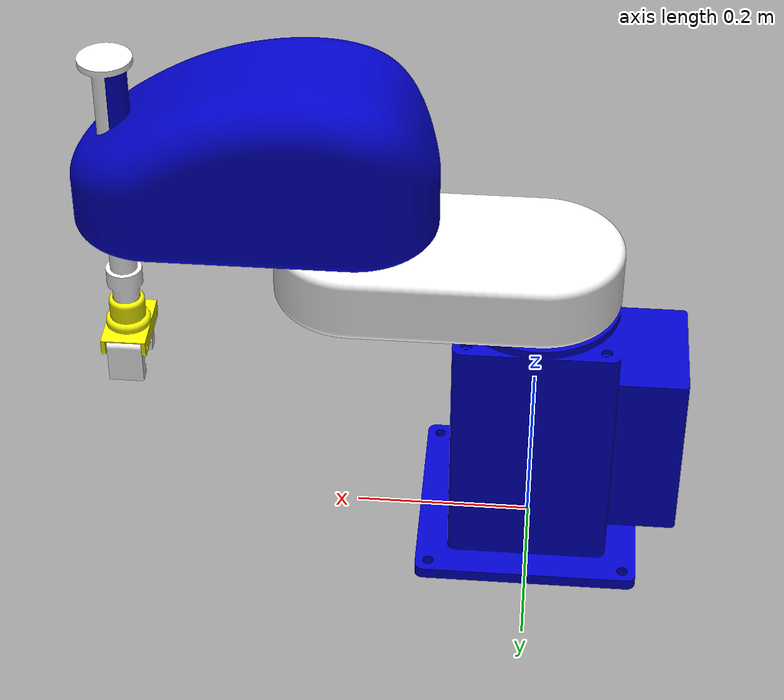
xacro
<?xml version="1.0"?>
<robot xmlns:xacro="http://www.ros.org/wiki/xacro" name="scara">

  <xacro:arg name="is_sim" default="true"/>

  <xacro:include filename="$(find scara_description)/urdf/scara_gazebo.xacro" />
  <xacro:include filename="$(find scara_description)/urdf/scara_ros2_control.xacro" />

  <material name="blue">
    <color rgba="0 0 0.8 1"/>
  </material>
  <material name="white">
    <color rgba="1 1 1 1"/>
  </material>
  <material name="yellow">
    <color rgba="1 1 0 1"/>
  </material>

  <xacro:property name="PI" value="3.14159265359" />
  <xacro:property name="effort" value="30.0" />
  <xacro:property name="velocity" value="1.0" />

  <xacro:macro name="default_inertial" params="mass">
    <inertial>
      <origin xyz="0 0 0" rpy="0 0 0"/>
      <mass value="${mass}" />
      <inertia ixx="1.0" ixy="0.0" ixz="0.0"
               iyy="1.0" iyz="0.0"
               izz="1.0" />
    </inertial>
  </xacro:macro>

  <xacro:macro name="default_transmission" params="number">
    <transmission name="transmission_${number}">
      <plugin>transmission_interface/SimpleTransmission</plugin>
      <actuator name="motor_${number}" role="actuator1"/>
      <joint name="joint_${number}" role="joint1">
        <mechanical_reduction>1.0</mechanical_reduction>
      </joint>
    </transmission>
  </xacro:macro>

  <link name="world"/>

  <joint name="virtual_joint" type="fixed">
    <parent link="world"/>
    <child link="base_link"/>
    <origin xyz="0 0 0" rpy="0 0 0"/>
  </joint>

  <link name="base_link">
    <xacro:default_inertial mass="2.0"/>
    <visual>
      <origin rpy="0 0 ${PI}" xyz="0 0 0.15"/>
      <geometry>
        <mesh filename="package://scara_description/meshes/bs.stl" scale="0.001 0.001 0.001"/>
      </geometry>
      <material name="blue"/>
    </visual>
    <collision>
      <origin rpy="0 0 ${PI}" xyz="0 0 0.15"/>
      <geometry>
        <mesh filename="package://scara_description/meshes/bs.stl" scale="0.001 0.001 0.001"/>
      </geometry>
    </collision>
  </link>

  <joint name="joint_1" type="revolute">
    <parent link="base_link"/>
    <child link="es_link"/>
    <origin xyz="0 0 0.309" rpy="0 0 0"/>
    <axis xyz="0 0 1"/>
    <limit lower="-${PI}" upper="${PI}" effort="${effort}" velocity="${velocity}"/>
  </joint>

  <link name="es_link">
    <xacro:default_inertial mass="0.5"/>
    <visual>
      <origin rpy="0 0 ${PI}" xyz="0.1 0 0"/>
      <geometry>
        <mesh filename="package://scara_description/meshes/es.stl" scale="0.001 0.001 0.001"/>
      </geometry>
      <material name="white"/>
    </visual>
    <collision>
      <origin rpy="0 0 ${PI}" xyz="0.1 0 0"/>
      <geometry>
        <mesh filename="package://scara_description/meshes/es.stl" scale="0.001 0.001 0.001"/>
      </geometry>
    </collision>
  </link>

  <joint name="joint_2" type="revolute">
    <parent link="es_link"/>
    <child link="as_link"/>
    <origin xyz="0.2 0 0.078" rpy="0 0 0"/>
    <axis xyz="0 0 1"/>
    <limit lower="-${PI/2}" upper="${PI/2}" effort="${effort}" velocity="${velocity}"/>
  </joint>

  <link name="as_link">
    <xacro:default_inertial mass="0.5"/>
    <visual>
      <origin rpy="0 0 ${PI}" xyz="0.1062 0 0.049"/>
      <geometry>
        <mesh filename="package://scara_description/meshes/as.stl" scale="0.001 0.001 0.001"/>
      </geometry>
      <material name="blue"/>
    </visual>
    <collision>
      <origin rpy="0 0 ${PI}" xyz="0.1062 0 0.049"/>
      <geometry>
        <mesh filename="package://scara_description/meshes/as.stl" scale="0.001 0.001 0.001"/>
      </geometry>
    </collision>
  </link>

  <joint name="joint_3" type="prismatic">
    <parent link="as_link"/>
    <child link="cs_link"/>
    <origin xyz="0.2562 0 0.049" rpy="0 0 0"/>
    <axis xyz="0 0 1"/>
    <limit lower="-0.22" upper="0" effort="${effort}" velocity="${velocity}"/>
  </joint>

  <link name="cs_link">
    <xacro:default_inertial mass="0.15"/>
    <visual>
      <origin rpy="0 0 0" xyz="0 0 0"/>
      <geometry>
        <mesh filename="package://scara_description/meshes/cs.stl" scale="0.001 0.001 0.001"/>
      </geometry>
      <material name="white"/>
    </visual>
    <collision>
      <origin rpy="0 0 0" xyz="0 0 0"/>
      <geometry>
        <mesh filename="package://scara_description/meshes/cs.stl" scale="0.001 0.001 0.001"/>
      </geometry>
    </collision>
  </link>

  <joint name="wrist_joint" type="revolute">
    <parent link="cs_link"/>
    <child link="g1_gripper"/>
    <origin xyz="0 0 -0.175" rpy="0 0 0"/>
    <axis xyz="0 0 1"/>
    <limit lower="-${PI/2}" upper="${PI/2}" effort="${effort}" velocity="${velocity}"/>
  </joint>

  <link name="g1_gripper">
    <xacro:default_inertial mass="0.1"/>
    <visual>
      <origin rpy="0 0 0" xyz="0 0 0"/>
      <geometry>
        <mesh filename="package://scara_description/meshes/g1.stl" scale="0.001 0.001 0.001"/>
      </geometry>
      <material name="yellow"/>
    </visual>
    <collision>
      <origin rpy="0 0 0" xyz="0 0 0"/>
      <geometry>
        <mesh filename="package://scara_description/meshes/g1.stl" scale="0.001 0.001 0.001"/>
      </geometry>
    </collision>
  </link>

  <joint name="gripper_joint1" type="prismatic">
    <parent link="g1_gripper"/>
    <child link="g2_gripper"/>
    <origin xyz="0.0195 0.010 -0.04175" rpy="0 0 0"/>
    <axis xyz="0 -1 0"/>
    <limit lower="0" upper="0.015" effort="${effort}" velocity="0.1"/>
  </joint>

  <link name="g2_gripper">
    <xacro:default_inertial mass="0.02"/>
    <visual>
      <origin rpy="0 0 0" xyz="0 0 0"/>
      <geometry>
        <mesh filename="package://scara_description/meshes/g2.stl" scale="0.001 0.001 0.001"/>
      </geometry>
      <material name="white"/>
    </visual>
    <collision>
      <origin rpy="0 0 0" xyz="0 0 0"/>
      <geometry>
        <mesh filename="package://scara_description/meshes/g2.stl" scale="0.001 0.001 0.001"/>
      </geometry>
    </collision>
  </link>

  <joint name="gripper_joint2" type="prismatic">
    <parent link="g1_gripper"/>
    <child link="g3_gripper"/>
    <origin xyz="0.0195 -0.030 -0.04175" rpy="0 0 0"/>
    <axis xyz="0 -1 0"/>
    <limit lower="-0.015" upper="0" effort="${effort}" velocity="0.1"/>
    <mimic joint="gripper_joint1" multiplier="-1" offset="0"/>
  </joint>

  <link name="g3_gripper">
    <xacro:default_inertial mass="0.02"/>
    <visual>
      <origin rpy="0 0 ${PI/2}" xyz="0 0 0"/>
      <geometry>
        <mesh filename="package://scara_description/meshes/g3.stl" scale="0.001 0.001 0.001"/>
      </geometry>
      <material name="white"/>
    </visual>
    <collision>
      <origin rpy="0 0 ${PI/2}" xyz="0 0 0"/>
      <geometry>
        <mesh filename="package://scara_description/meshes/g3.stl" scale="0.001 0.001 0.001"/>
      </geometry>
    </collision>
  </link>

  <xacro:default_transmission number="1"/>
  <xacro:default_transmission number="2"/>
  <xacro:default_transmission number="3"/>

</robot>
